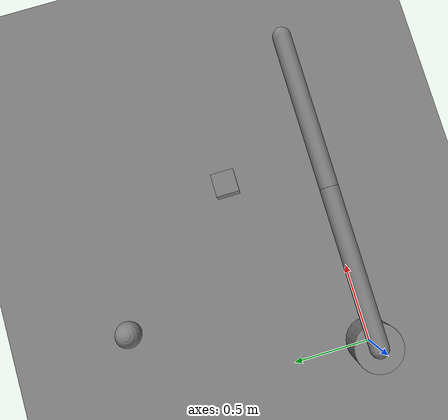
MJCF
<mujoco model="pick_place_arm">

    <option
        timestep="0.002"
        gravity="0 0 -9.81"
    />

    <worldbody>

        <!-- =================================================
             地面
        ================================================== -->

        <geom
            name="ground"
            type="plane"
            size="5 5 0.1"
        />

        <!-- =================================================
             机械臂基座
        ================================================== -->

        <body
            name="base"
            pos="0 0 0.15"
        >

            <geom
                name="base_geom"
                type="cylinder"
                size="0.15 0.15"
            />

            <!-- =============================================
                 Link 1
            ============================================== -->

            <body
                name="link1"
                pos="0 0 0.15"
            >

                <joint
                    name="joint1"
                    type="hinge"
                    axis="0 0 1"
                    damping="0.1"
                />

                <geom
                    name="link1_geom"
                    type="capsule"
                    fromto="0 0 0 1 0 0"
                    size="0.06"
                />

                <!-- =========================================
                     Link 2
                ========================================== -->

                <body
                    name="link2"
                    pos="1 0 0"
                >

                    <joint
                        name="joint2"
                        type="hinge"
                        axis="0 0 1"
                        damping="0.1"
                    />

                    <geom
                        name="link2_geom"
                        type="capsule"
                        fromto="0 0 0 1 0 0"
                        size="0.06"
                    />

                    <!-- 末端执行器位置 -->
                    <site
                        name="ee_site"
                        pos="1 0 0"
                        type="sphere"
                        size="0.04"
                    />

                </body>

            </body>

        </body>

        <body
            name="cube"
            mocap="true"
            pos="1.2 0.6 0.30"
        >

            <geom
                name="cube_geom"
                type="box"
                size="0.07 0.07 0.07"
                contype="0"
                conaffinity="0"
            />

        </body>

        <!-- =================================================
             放置目标位置
        ================================================== -->

        <site
            name="place_target"
            pos="0.5 1.4 0.30"
            type="sphere"
            size="0.08"
        />

    </worldbody>

    <!-- =====================================================
         排除相邻连杆碰撞
    ====================================================== -->

    <contact>

        <exclude
            body1="base"
            body2="link1"
        />

        <exclude
            body1="link1"
            body2="link2"
        />

    </contact>

    <!-- =====================================================
         两个关节执行器
    ====================================================== -->

    <actuator>

        <motor
            name="motor1"
            joint="joint1"
            gear="1"
            ctrllimited="true"
            ctrlrange="-20 20"
        />

        <motor
            name="motor2"
            joint="joint2"
            gear="1"
            ctrllimited="true"
            ctrlrange="-20 20"
        />

    </actuator>

</mujoco>
